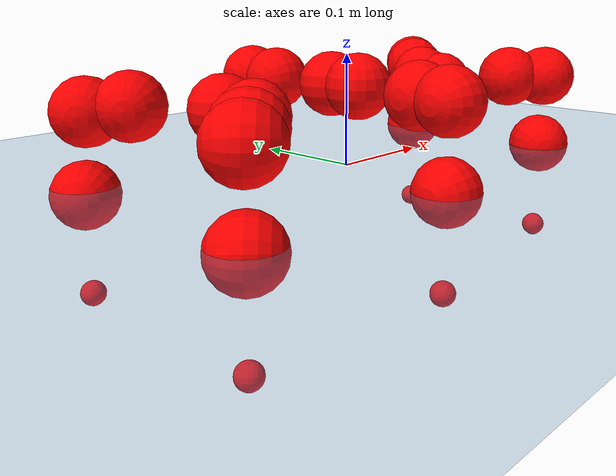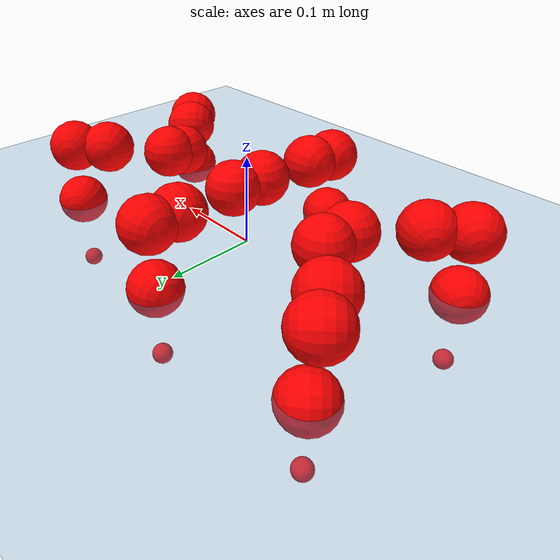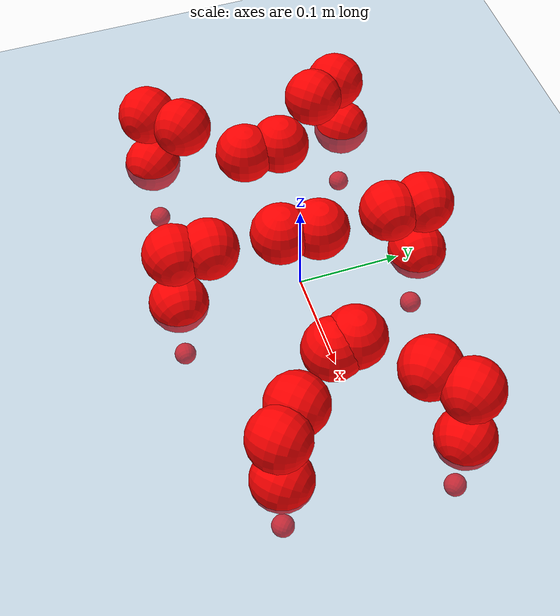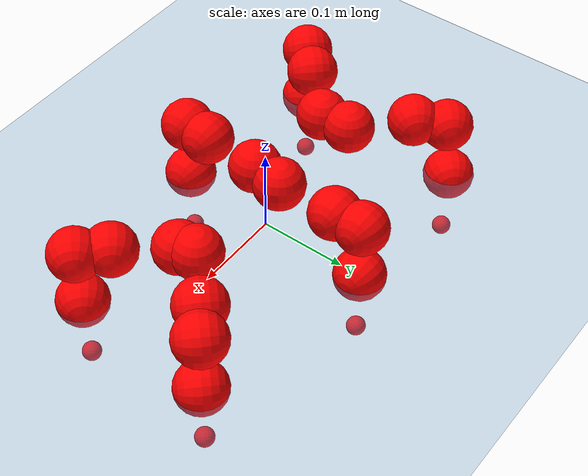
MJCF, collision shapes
<mujoco model="Golem">
  <compiler angle="radian" assetdir="assets" balanceinertia="true" inertiafromgeom="false"/>

  <option timestep="0.005" density="1.2" viscosity="2e-05"/>

  <size nkey="1"/>

  <visual>
    <quality shadowsize="8192"/>
    <map shadowclip="0.5"/>
  </visual>

  <default>
    <default class="/">
      <joint armature="0.01" damping="0.01" frictionloss="0.01"/>
      <geom contype="0" conaffinity="0" group="1" solref="-1000 -80"/>
      <site size="0.01 0.005 0.005" group="5"/>
      <general forcelimited="true" biastype="affine" gainprm="25" biasprm="0 -25 -0.5"/>
      <default class="visual">
        <geom type="mesh" group="2"/>
      </default>
      <default class="collision">
        <geom group="3"/>
      </default>
      <default class="foot">
        <geom size="0.01 0 0" condim="6" group="4" priority="1" solimp="0.015 1 0.01"/>
      </default>
      <default class="reward_collision_sphere">
        <geom group="5" rgba="1 0 0 1"/>
      </default>
    </default>
  </default>

  <asset>
    <texture type="skybox" colorspace="auto" name="//unnamed_texture_0" builtin="gradient" rgb1="0.95 0.95 0.95" rgb2="0.95 0.95 0.95" width="100" height="600"/>
    <texture type="2d" colorspace="auto" name="texplane" builtin="checker" rgb1="0.345 0.575 0.748" rgb2="0.345 0.575 0.748" markrgb="1 1 1" width="512" height="512"/>
    <material name="MatPlane" class="/" texture="texplane" texuniform="true" texrepeat="2 2" specular="0.9"/>
    <mesh name="body" class="/" file="body.stl" scale="0.001 0.001 0.001"/>
    <mesh name="coxa" class="/" file="coxa.stl" scale="0.001 0.001 0.001"/>
    <mesh name="femur" class="/" file="femur.stl" scale="0.001 0.001 0.001"/>
    <mesh name="tibia" class="/" file="tibia.stl" scale="0.001 0.001 0.001"/>
    <mesh name="tarsus" class="/" file="tarsus.stl" scale="0.001 0.001 0.001"/>
  </asset>

  <worldbody>
    <geom name="floor" class="/" size="100 100 0.125" type="plane" group="0" material="MatPlane"/>
    <light name="toplight_shadow" class="/" pos="0 0 5" dir="0.0990148 0.0990148 -0.990148" type="directional" ambient="0.04 0.04 0.04" diffuse="0.55 0.55 0.55" specular="0.12 0.12 0.12"/>
    <light name="toplight_fill" class="/" pos="0 0 5" dir="0.0990148 0.0990148 -0.990148" type="directional" castshadow="false" ambient="0.04 0.04 0.04" diffuse="0.3 0.3 0.3" specular="0.08 0.08 0.08"/>
    <body name="trunk" pos="-0.00044784 0.000365137 0.00261238" quat="0.999999 0.000166467 0.00088348 -0.00141955">
      <inertial pos="0.00323726 -0.000411244 -0.00321859" quat="0.999998 -0.000541088 -0.00189121 0.000459938" mass="1.38925" diaginertia="0.00343677 5.21624e-05 0.0120613"/>
      <joint name="//unnamed_joint_0" type="free"/>
      <geom name="//unnamed_geom_1" class="/" pos="0 0 0.0658561" quat="1 0 0 0" type="mesh" rgba="0.9 0.9 0.9 1" mesh="body"/>
      <site name="imu" class="/" pos="0.0911214 -0.00714481 0.0982811" size="0.0072632"/>
      <camera name="track" class="/" pos="0 -0.698292 0" quat="0.707107 0.707107 0 0" mode="trackcom"/>
      <camera name="ego_camera" class="/" pos="0.104106 0 0.1029" quat="-0.5 -0.5 0.5 0.5"/>
      <body name="coxa_RR" pos="-0.14088 -0.0335881 0.0597205" quat="0.38186 -0.000497536 0.00125864 -0.924219">
        <inertial pos="-0.000735002 0.000506938 -0.000277308" quat="0.99999 -0.000633367 -0.00412245 -0.00149843" mass="0.0738142" diaginertia="0.00328753 5.10938e-05 0.0115203"/>
        <joint name="coxa_joint_RR" class="/" pos="0 0 0" axis="-0.00480795 -0.00986547 -0.99994" stiffness="0.00599771" range="-3.13288 3.17759" armature="0.00723333" damping="0" frictionloss="0.00775107"/>
        <geom name="//unnamed_geom_2" class="/" type="mesh" rgba="0.2 0.2 0.2 1" mesh="coxa"/>
        <geom name="//unnamed_geom_3" class="reward_collision_sphere" size="0.0290528" pos="-0.0240244 0 0"/>
        <body name="femur_RR" pos="0.0472304 0.000179693 0.00372448" quat="0.500287 -0.499229 0.50033 0.500153">
          <inertial pos="-0.00120793 0.000528126 -0.0025786" quat="0.999995 -0.00167841 0.00132824 0.00249285" mass="0.0761929" diaginertia="0.00335586 5.26657e-05 0.0110711"/>
          <joint name="femur_joint_RR" class="/" pos="0 0 0" axis="-0.00608349 -0.00797573 -0.99995" range="-3.17678 3.13636" armature="0.00780958" damping="0.00162263" frictionloss="0.00628757"/>
          <geom name="//unnamed_geom_4" class="/" type="mesh" rgba="0.9 0.9 0.9 1" mesh="femur"/>
          <geom name="//unnamed_geom_5" class="reward_collision_sphere" size="0.0290528"/>
          <body name="tibia_RR" pos="0.00118197 -0.040885 -0.000366825" quat="8.92898e-05 1 1.8085e-05 -6.84141e-05">
            <inertial pos="-0.000462812 0.0015202 0.00170679" quat="0.999992 -0.00186918 0.00314509 -0.00143335" mass="0.0758218" diaginertia="0.00317299 5.20753e-05 0.0116352"/>
            <joint name="tibia_joint_RR" class="/" pos="0 0 0" axis="-0.00927231 -0.00544833 0.999942" stiffness="0.00820955" range="-3.184 3.1388" armature="0.00746208" damping="0.0119464" frictionloss="0.0065213"/>
            <geom name="//unnamed_geom_6" class="/" type="mesh" rgba="0.2 0.2 0.2 1" mesh="tibia"/>
            <geom name="//unnamed_geom_7" class="reward_collision_sphere" size="0.0290528"/>
            <body name="tarsus_RR" pos="0.071513 0.00109065 7.73228e-05" quat="0.999999 0.00106525 -0.000350731 -0.000697246">
              <inertial pos="0.0494297 -0.000702149 0.00230861" quat="0.500057 0.497994 0.500594 0.501348" mass="0.0765432" diaginertia="0.00344169 5.20419e-05 0.0119521"/>
              <joint name="tarsus_joint_RR" class="/" pos="0 0 0" axis="0.000517692 0.00405801 0.999992" range="-3.18162 3.09996" armature="0.00628271" damping="0.0142239" frictionloss="0.00809461"/>
              <geom name="//unnamed_geom_8" class="/" type="mesh" rgba="0.9 0.9 0.9 1" mesh="tarsus"/>
              <geom name="foot_1" class="foot" size="0.00782736" pos="0.089691 0 0" quat="0 -0.707107 0 0.707107"/>
              <geom name="//unnamed_geom_10" class="reward_collision_sphere" size="0.0290528"/>
              <geom name="//unnamed_geom_11" class="reward_collision_sphere" size="0.0108948" pos="0.0860873 0 0"/>
              <site name="foot_1" class="foot" pos="0.089691 0 0" quat="0 -0.707107 0 0.707107" size="0.0072632"/>
            </body>
          </body>
        </body>
      </body>
      <body name="coxa_RM" pos="-0.00431145 -0.0417869 0.0709102" quat="0.707499 -0.000262128 0.000658452 -0.706714">
        <inertial pos="0.002138 0.00132169 0.00250893" quat="0.999992 -0.000612208 0.00386859 -0.000246723" mass="0.0752459" diaginertia="0.00327689 5.0127e-05 0.0112279"/>
        <joint name="coxa_joint_RM" class="/" pos="0 0 0" axis="-0.0051397 -0.00471679 -0.999976" range="-3.13124 3.12508" armature="0.00622854" damping="0.0219207" frictionloss="0.00712356"/>
        <geom name="//unnamed_geom_12" class="/" type="mesh" rgba="0.2 0.2 0.2 1" mesh="coxa"/>
        <geom name="//unnamed_geom_13" class="reward_collision_sphere" size="0.0290528" pos="-0.0240244 0 0"/>
        <body name="femur_RM" pos="0.0444718 -0.00436224 -0.00099707" quat="0.500047 -0.499826 0.499955 0.500172">
          <inertial pos="0.00104453 0.00207116 0.000879932" quat="0.999915 0.0103176 -0.00204764 0.00767692" mass="0.078898" diaginertia="0.00340355 5.04228e-05 0.0112177"/>
          <joint name="femur_joint_RM" class="/" pos="0 0 0" axis="-0.0121857 0.00447841 -0.999916" range="-3.17893 3.1468" armature="0.0069534" damping="0.0122119" frictionloss="0.00752223"/>
          <geom name="//unnamed_geom_14" class="/" type="mesh" rgba="0.9 0.9 0.9 1" mesh="femur"/>
          <geom name="//unnamed_geom_15" class="reward_collision_sphere" size="0.0290528"/>
          <body name="tibia_RM" pos="0.000717144 -0.0321555 -0.00394613" quat="-0.000742772 1 0.000461946 0.000129295">
            <inertial pos="0.00253812 -0.00313596 0.00146108" quat="0.999988 0.00311924 0.0038174 0.000373294" mass="0.0758884" diaginertia="0.00320096 5.17451e-05 0.0113536"/>
            <joint name="tibia_joint_RM" class="/" pos="0 0 0" axis="0.00102888 0.000476874 0.999999" stiffness="0.00178851" range="-3.09355 3.09243" armature="0.00668347" damping="0.0168651" frictionloss="0.00618485"/>
            <geom name="//unnamed_geom_16" class="/" type="mesh" rgba="0.2 0.2 0.2 1" mesh="tibia"/>
            <geom name="//unnamed_geom_17" class="reward_collision_sphere" size="0.0290528"/>
            <body name="tarsus_RM" pos="0.0729604 5.54841e-05 0.000416691" quat="1 -0.000166363 -0.000386528 -2.3048e-05">
              <inertial pos="0.049109 -0.00183299 -0.000668474" quat="0.499429 0.499969 0.498038 0.502553" mass="0.0789588" diaginertia="0.00337838 5.3433e-05 0.0114162"/>
              <joint name="tarsus_joint_RM" class="/" pos="0 0 0" axis="0.000476973 -3.35258e-05 1" stiffness="0.00204919" range="-3.18489 3.17822" armature="0.00597208" damping="0.0037583" frictionloss="0.00731147"/>
              <geom name="//unnamed_geom_18" class="/" type="mesh" rgba="0.9 0.9 0.9 1" mesh="tarsus"/>
              <geom name="foot_2" class="foot" size="0.00673594" pos="0.089691 0 0" quat="0 -0.707107 0 0.707107"/>
              <geom name="//unnamed_geom_20" class="reward_collision_sphere" size="0.0290528"/>
              <geom name="//unnamed_geom_21" class="reward_collision_sphere" size="0.0108948" pos="0.0860873 0 0"/>
              <site name="foot_2" class="foot" pos="0.089691 0 0" quat="0 -0.707107 0 0.707107" size="0.0072632"/>
            </body>
          </body>
        </body>
      </body>
      <body name="coxa_RF" pos="0.14369 -0.0294738 0.061749" quat="0.923836 -0.000212078 0.00017097 -0.382788">
        <inertial pos="-8.6333e-05 0.00357165 0.00131711" quat="0.999998 0.000177461 0.000862724 0.00170452" mass="0.0734465" diaginertia="0.00328562 5.30176e-05 0.0114738"/>
        <joint name="coxa_joint_RF" class="/" pos="0 0 0" axis="0.000211639 -0.00184876 -0.999998" range="-3.1861 3.09956" armature="0.00685095" damping="0.0286438" frictionloss="0.00666751"/>
        <geom name="//unnamed_geom_22" class="/" type="mesh" rgba="0.2 0.2 0.2 1" mesh="coxa"/>
        <geom name="//unnamed_geom_23" class="reward_collision_sphere" size="0.0290528" pos="-0.0240244 0 0"/>
        <body name="femur_RF" pos="0.0437374 -0.00123258 0.00562635" quat="0.499873 -0.499563 0.499887 0.500676">
          <inertial pos="0.00111258 -0.000232821 -0.00188175" quat="0.999934 0.00411923 -0.00565359 -0.00912236" mass="0.0749712" diaginertia="0.00328593 5.40544e-05 0.0113069"/>
          <joint name="femur_joint_RF" class="/" pos="0 0 0" axis="0.00493989 -0.0116938 -0.999919" stiffness="0.00600783" range="-3.12789 3.13752" armature="0.00800365" damping="0" frictionloss="0.00790218"/>
          <geom name="//unnamed_geom_24" class="/" type="mesh" rgba="0.9 0.9 0.9 1" mesh="femur"/>
          <geom name="//unnamed_geom_25" class="reward_collision_sphere" size="0.0290528"/>
          <body name="tibia_RF" pos="-1.40141e-05 -0.0363087 0.0018104" quat="-2.82804e-05 1 -2.11527e-05 0.000118769">
            <inertial pos="0.000687011 0.00168645 -0.00247039" quat="0.999994 -0.00261005 -0.000687827 0.00231383" mass="0.076298" diaginertia="0.00327647 4.98835e-05 0.0108054"/>
            <joint name="tibia_joint_RF" class="/" pos="0 0 0" axis="-0.000473863 -0.00630606 0.99998" range="-3.19051 3.15736" armature="0.00627695" damping="0.0124097" frictionloss="0.00718645"/>
            <geom name="//unnamed_geom_26" class="/" type="mesh" rgba="0.2 0.2 0.2 1" mesh="tibia"/>
            <geom name="//unnamed_geom_27" class="reward_collision_sphere" size="0.0290528"/>
            <body name="tarsus_RF" pos="0.0686363 -0.00092973 -0.00154474" quat="1 -0.000425451 0.0002362 -0.00069125">
              <inertial pos="0.0502036 -0.00072505 -0.00318336" quat="0.499532 0.500562 0.499943 0.499962" mass="0.0771039" diaginertia="0.00330261 5.19407e-05 0.0118877"/>
              <joint name="tarsus_joint_RF" class="/" pos="0 0 0" axis="0.00668052 -0.00974146 0.99993" range="-3.18643 3.19162" armature="0.00723658" damping="0.0150047" frictionloss="0.0075292"/>
              <geom name="//unnamed_geom_28" class="/" type="mesh" rgba="0.9 0.9 0.9 1" mesh="tarsus"/>
              <geom name="foot_3" class="foot" size="0.00796403" pos="0.089691 0 0" quat="0 -0.707107 0 0.707107"/>
              <geom name="//unnamed_geom_30" class="reward_collision_sphere" size="0.0290528"/>
              <geom name="//unnamed_geom_31" class="reward_collision_sphere" size="0.0108948" pos="0.0860873 0 0"/>
              <site name="foot_3" class="foot" pos="0.089691 0 0" quat="0 -0.707107 0 0.707107" size="0.0072632"/>
            </body>
          </body>
        </body>
      </body>
      <body name="coxa_LR" pos="-0.140704 0.0365271 0.0608205" quat="0.38342 -0.000284319 -0.000362063 0.923574">
        <inertial pos="-0.00146009 -0.00130087 -0.00106854" quat="1 -8.58616e-05 -0.000471953 0.000414494" mass="0.0778197" diaginertia="0.00343833 5.24364e-05 0.0116615"/>
        <joint name="coxa_joint_LR" class="/" pos="0 0 0" axis="0.0120176 -0.000103817 -0.999928" range="-3.18905 3.15957" armature="0.00629042" damping="0.0272288" frictionloss="0.00755646"/>
        <geom name="//unnamed_geom_32" class="/" type="mesh" rgba="0.2 0.2 0.2 1" mesh="coxa"/>
        <geom name="//unnamed_geom_33" class="reward_collision_sphere" size="0.0290528" pos="-0.0240244 0 0"/>
        <body name="femur_LR" pos="0.048256 -0.00110305 0.00285857" quat="0.500452 -0.499474 0.499792 0.500282">
          <inertial pos="0.00275507 -0.00178182 -0.000178009" quat="0.999993 0.00310714 0.00196703 -0.00121066" mass="0.0737802" diaginertia="0.00326413 5.12448e-05 0.0116974"/>
          <joint name="femur_joint_LR" class="/" pos="0 0 0" axis="-0.000714705 -0.000674233 1" stiffness="0.00792204" range="-3.09927 3.06971" armature="0.00704612" damping="0.015599" frictionloss="0.00617328"/>
          <geom name="//unnamed_geom_34" class="/" type="mesh" rgba="0.9 0.9 0.9 1" mesh="femur"/>
          <geom name="//unnamed_geom_35" class="reward_collision_sphere" size="0.0290528"/>
          <body name="tibia_LR" pos="0.00521825 -0.0369866 -0.00725871" quat="-0.000973511 1 -0.000148617 3.03744e-05">
            <inertial pos="0.00301741 -0.0036473 0.00385217" quat="0.999911 -0.0118443 -0.00299759 0.00538936" mass="0.0727756" diaginertia="0.00320645 5.06596e-05 0.0111749"/>
            <joint name="tibia_joint_LR" class="/" pos="0 0 0" axis="-0.000497443 -0.00881573 -0.999961" range="-3.08615 3.16506" armature="0.00809005" damping="0.00117306" frictionloss="0.00660629"/>
            <geom name="//unnamed_geom_36" class="/" type="mesh" rgba="0.2 0.2 0.2 1" mesh="tibia"/>
            <geom name="//unnamed_geom_37" class="reward_collision_sphere" size="0.0290528"/>
            <body name="tarsus_LR" pos="0.0700591 0.00676557 0.00588045" quat="0.999999 0.00102471 -0.000671661 -0.000182498">
              <inertial pos="0.0488983 -0.00125199 -0.00155234" quat="0.5003 0.499866 0.500582 0.499252" mass="0.0782987" diaginertia="0.00337902 5.18146e-05 0.0118072"/>
              <joint name="tarsus_joint_LR" class="/" pos="0 0 0" axis="0.00595027 -0.0118784 -0.999912" range="-3.17836 3.14277" armature="0.00724365" damping="0.0251698" frictionloss="0.00795213"/>
              <geom name="//unnamed_geom_38" class="/" type="mesh" rgba="0.9 0.9 0.9 1" mesh="tarsus"/>
              <geom name="foot_4" class="foot" size="0.00760965" pos="0.089691 0 0" quat="0.707107 0 -0.707107 0"/>
              <geom name="//unnamed_geom_40" class="reward_collision_sphere" size="0.0290528"/>
              <geom name="//unnamed_geom_41" class="reward_collision_sphere" size="0.0108948" pos="0.0860873 0 0"/>
              <site name="foot_4" class="foot" pos="0.089691 0 0" quat="0.707107 0 -0.707107 0" size="0.0072632"/>
            </body>
          </body>
        </body>
      </body>
      <body name="coxa_LM" pos="0.000281206 0.0418807 0.0697772" quat="0.706569 -0.000406686 -0.00153516 0.707642">
        <inertial pos="-0.00233536 0.000115659 0.00130846" quat="0.999977 -0.00422199 0.00496064 0.00192402" mass="0.070834" diaginertia="0.00303359 4.96317e-05 0.0113351"/>
        <joint name="coxa_joint_LM" class="/" pos="0 0 0" axis="0.000954159 -0.000121752 -1" range="-3.12802 3.09175" armature="0.00700754" damping="0.017103" frictionloss="0.00717228"/>
        <geom name="//unnamed_geom_42" class="/" type="mesh" rgba="0.2 0.2 0.2 1" mesh="coxa"/>
        <geom name="//unnamed_geom_43" class="reward_collision_sphere" size="0.0290528" pos="-0.0240244 0 0"/>
        <body name="femur_LM" pos="0.0463997 0.000988386 -0.000842591" quat="0.49998 -0.500057 0.500036 0.499928">
          <inertial pos="0.000893092 -0.000349073 0.00070515" quat="0.999977 0.00238089 0.00309953 0.00557957" mass="0.0788725" diaginertia="0.00328887 5.33313e-05 0.0119019"/>
          <joint name="femur_joint_LM" class="/" pos="0 0 0" axis="0.00570862 0.0092486 0.999941" stiffness="0.0114324" range="-3.08768 3.11947" armature="0.00650752" damping="0.00854443" frictionloss="0.00765076"/>
          <geom name="//unnamed_geom_44" class="/" type="mesh" rgba="0.9 0.9 0.9 1" mesh="femur"/>
          <geom name="//unnamed_geom_45" class="reward_collision_sphere" size="0.0290528"/>
          <body name="tibia_LM" pos="-0.000139012 -0.0342236 -0.000254397" quat="-0.000447425 1 0.000551897 0.000509062">
            <inertial pos="0.00247083 -0.00361332 0.00122108" quat="1 0.000796983 0.000330574 -0.000196518" mass="0.0786968" diaginertia="0.00341726 5.30641e-05 0.0120413"/>
            <joint name="tibia_joint_LM" class="/" pos="0 0 0" axis="0.00161089 0.00212031 -0.999996" stiffness="0.0113966" range="-3.13484 3.13539" armature="0.00759413" damping="0.00529517" frictionloss="0.00668769"/>
            <geom name="//unnamed_geom_46" class="/" type="mesh" rgba="0.2 0.2 0.2 1" mesh="tibia"/>
            <geom name="//unnamed_geom_47" class="reward_collision_sphere" size="0.0290528"/>
            <body name="tarsus_LM" pos="0.0722498 -0.000185586 -0.00170258" quat="1 1.12208e-05 -0.00021317 -0.000120104">
              <inertial pos="0.0459984 -0.00175262 5.80975e-05" quat="0.500599 0.503776 0.501165 0.494413" mass="0.077574" diaginertia="0.00342638 5.31101e-05 0.0117642"/>
              <joint name="tarsus_joint_LM" class="/" pos="0 0 0" axis="-0.00133482 -0.00130029 -0.999998" range="-3.08655 3.13147" armature="0.00712902" damping="0" frictionloss="0.00744417"/>
              <geom name="//unnamed_geom_48" class="/" type="mesh" rgba="0.9 0.9 0.9 1" mesh="tarsus"/>
              <geom name="foot_5" class="foot" size="0.00786458" pos="0.089691 0 0" quat="0.707107 0 -0.707107 0"/>
              <geom name="//unnamed_geom_50" class="reward_collision_sphere" size="0.0290528"/>
              <geom name="//unnamed_geom_51" class="reward_collision_sphere" size="0.0108948" pos="0.0860873 0 0"/>
              <site name="foot_5" class="foot" pos="0.089691 0 0" quat="0.707107 0 -0.707107 0" size="0.0072632"/>
            </body>
          </body>
        </body>
      </body>
      <body name="coxa_LF" pos="0.141321 0.0257398 0.0668611" quat="0.92407 -0.000651527 0.000544078 0.382222">
        <inertial pos="-0.00190658 -0.000358601 -0.00126081" quat="0.999914 0.00594481 -0.00269503 0.011356" mass="0.0761234" diaginertia="0.00328122 5.25479e-05 0.0116016"/>
        <joint name="coxa_joint_LF" class="/" pos="0 0 0" axis="0.00471246 -0.0060189 -0.999971" range="-3.15287 3.08643" armature="0.00714717" damping="0.00618319" frictionloss="0.00794021"/>
        <geom name="//unnamed_geom_52" class="/" type="mesh" rgba="0.2 0.2 0.2 1" mesh="coxa"/>
        <geom name="//unnamed_geom_53" class="reward_collision_sphere" size="0.0290528" pos="-0.0240244 0 0"/>
        <body name="femur_LF" pos="0.0472529 -0.00250721 0.00341691" quat="0.500135 -0.500058 0.500294 0.499513">
          <inertial pos="0.00110258 0.000765804 -0.00192789" quat="0.999875 0.0099408 0.0111074 -0.00523963" mass="0.0772784" diaginertia="0.00321955 5.36602e-05 0.011484"/>
          <joint name="femur_joint_LF" class="/" pos="0 0 0" axis="-0.00780164 0.00348397 0.999963" range="-3.13849 3.09534" armature="0.00694193" damping="0.00162263" frictionloss="0.00854018"/>
          <geom name="//unnamed_geom_54" class="/" type="mesh" rgba="0.9 0.9 0.9 1" mesh="femur"/>
          <geom name="//unnamed_geom_55" class="reward_collision_sphere" size="0.0290528"/>
          <body name="tibia_LF" pos="0.000906643 -0.0401086 -0.00390667" quat="9.7156e-05 1 0.00032378 -0.000234184">
            <inertial pos="0.00180735 -0.000717679 5.20224e-05" quat="0.999952 -0.00130452 -0.00952395 -0.00172375" mass="0.0775727" diaginertia="0.00318235 5.06404e-05 0.0112803"/>
            <joint name="tibia_joint_LF" class="/" pos="0 0 0" axis="0.00354751 -0.0080633 -0.999961" range="-3.08227 3.14528" armature="0.00798167" damping="0" frictionloss="0.00696584"/>
            <geom name="//unnamed_geom_56" class="/" type="mesh" rgba="0.2 0.2 0.2 1" mesh="tibia"/>
            <geom name="//unnamed_geom_57" class="reward_collision_sphere" size="0.0290528"/>
            <body name="tarsus_LF" pos="0.0723504 0.00264576 0.00209615" quat="1 9.76347e-05 -6.98274e-05 -0.000101886">
              <inertial pos="0.0465898 -3.99861e-05 -0.00267722" quat="0.500106 0.497898 0.500917 0.501072" mass="0.0720458" diaginertia="0.00329703 5.01702e-05 0.0113531"/>
              <joint name="tarsus_joint_LF" class="/" pos="0 0 0" axis="-0.000512403 -0.000218725 -1" stiffness="0.0320584" range="-3.14457 3.16714" armature="0.00730785" damping="0.0355188" frictionloss="0.00788191"/>
              <geom name="//unnamed_geom_58" class="/" type="mesh" rgba="0.9 0.9 0.9 1" mesh="tarsus"/>
              <geom name="foot_6" class="foot" size="0.00747299" pos="0.089691 0 0" quat="0.707107 0 -0.707107 0"/>
              <geom name="//unnamed_geom_60" class="reward_collision_sphere" size="0.0290528"/>
              <geom name="//unnamed_geom_61" class="reward_collision_sphere" size="0.0108948" pos="0.0860873 0 0"/>
              <site name="foot_6" class="foot" pos="0.089691 0 0" quat="0.707107 0 -0.707107 0" size="0.0072632"/>
            </body>
          </body>
        </body>
      </body>
    </body>
  </worldbody>

  <contact>
    <pair class="/" geom1="floor" geom2="foot_1" name="//unnamed_contact_0"/>
    <pair class="/" geom1="floor" geom2="foot_2" name="//unnamed_contact_1"/>
    <pair class="/" geom1="floor" geom2="foot_3" name="//unnamed_contact_2"/>
    <pair class="/" geom1="floor" geom2="foot_4" name="//unnamed_contact_3"/>
    <pair class="/" geom1="floor" geom2="foot_5" name="//unnamed_contact_4"/>
    <pair class="/" geom1="floor" geom2="foot_6" name="//unnamed_contact_5"/>
  </contact>

  <actuator>
    <general name="coxa_joint_RR" class="/" joint="coxa_joint_RR" forcerange="-5.37594 5.37594" gainprm="19.4414" biasprm="0 -19.4414 -0.390367"/>
    <general name="femur_joint_RR" class="/" joint="femur_joint_RR" forcerange="-5.76897 5.76897" gainprm="19.4414" biasprm="0 -19.4414 -0.390367"/>
    <general name="tibia_joint_RR" class="/" joint="tibia_joint_RR" forcerange="-4.78282 4.78282" gainprm="19.4414" biasprm="0 -19.4414 -0.390367"/>
    <general name="tarsus_joint_RR" class="/" joint="tarsus_joint_RR" forcerange="-5.76791 5.76791" gainprm="19.4414" biasprm="0 -19.4414 -0.390367"/>
    <general name="coxa_joint_RM" class="/" joint="coxa_joint_RM" forcerange="-5.35179 5.35179" gainprm="19.4414" biasprm="0 -19.4414 -0.390367"/>
    <general name="femur_joint_RM" class="/" joint="femur_joint_RM" forcerange="-5.1615 5.1615" gainprm="19.4414" biasprm="0 -19.4414 -0.390367"/>
    <general name="tibia_joint_RM" class="/" joint="tibia_joint_RM" forcerange="-4.85338 4.85338" gainprm="19.4414" biasprm="0 -19.4414 -0.390367"/>
    <general name="tarsus_joint_RM" class="/" joint="tarsus_joint_RM" forcerange="-4.72515 4.72515" gainprm="19.4414" biasprm="0 -19.4414 -0.390367"/>
    <general name="coxa_joint_RF" class="/" joint="coxa_joint_RF" forcerange="-4.96844 4.96844" gainprm="19.4414" biasprm="0 -19.4414 -0.390367"/>
    <general name="femur_joint_RF" class="/" joint="femur_joint_RF" forcerange="-5.64761 5.64761" gainprm="19.4414" biasprm="0 -19.4414 -0.390367"/>
    <general name="tibia_joint_RF" class="/" joint="tibia_joint_RF" forcerange="-4.82243 4.82243" gainprm="19.4414" biasprm="0 -19.4414 -0.390367"/>
    <general name="tarsus_joint_RF" class="/" joint="tarsus_joint_RF" forcerange="-5.35231 5.35231" gainprm="19.4414" biasprm="0 -19.4414 -0.390367"/>
    <general name="coxa_joint_LR" class="/" joint="coxa_joint_LR" forcerange="-5.70297 5.70297" gainprm="19.4414" biasprm="0 -19.4414 -0.390367"/>
    <general name="femur_joint_LR" class="/" joint="femur_joint_LR" forcerange="-5.17624 5.17624" gainprm="19.4414" biasprm="0 -19.4414 -0.390367"/>
    <general name="tibia_joint_LR" class="/" joint="tibia_joint_LR" forcerange="-4.8371 4.8371" gainprm="19.4414" biasprm="0 -19.4414 -0.390367"/>
    <general name="tarsus_joint_LR" class="/" joint="tarsus_joint_LR" forcerange="-4.97725 4.97725" gainprm="19.4414" biasprm="0 -19.4414 -0.390367"/>
    <general name="coxa_joint_LM" class="/" joint="coxa_joint_LM" forcerange="-5.28108 5.28108" gainprm="19.4414" biasprm="0 -19.4414 -0.390367"/>
    <general name="femur_joint_LM" class="/" joint="femur_joint_LM" forcerange="-5.34039 5.34039" gainprm="19.4414" biasprm="0 -19.4414 -0.390367"/>
    <general name="tibia_joint_LM" class="/" joint="tibia_joint_LM" forcerange="-5.86366 5.86366" gainprm="19.4414" biasprm="0 -19.4414 -0.390367"/>
    <general name="tarsus_joint_LM" class="/" joint="tarsus_joint_LM" forcerange="-5.35454 5.35454" gainprm="19.4414" biasprm="0 -19.4414 -0.390367"/>
    <general name="coxa_joint_LF" class="/" joint="coxa_joint_LF" forcerange="-5.1444 5.1444" gainprm="19.4414" biasprm="0 -19.4414 -0.390367"/>
    <general name="femur_joint_LF" class="/" joint="femur_joint_LF" forcerange="-5.08696 5.08696" gainprm="19.4414" biasprm="0 -19.4414 -0.390367"/>
    <general name="tibia_joint_LF" class="/" joint="tibia_joint_LF" forcerange="-5.46867 5.46867" gainprm="19.4414" biasprm="0 -19.4414 -0.390367"/>
    <general name="tarsus_joint_LF" class="/" joint="tarsus_joint_LF" forcerange="-4.76821 4.76821" gainprm="19.4414" biasprm="0 -19.4414 -0.390367"/>
  </actuator>

  <sensor>
    <gyro site="imu" name="imu_angular_velocity"/>
    <velocimeter site="imu" name="imu_linear_velocity"/>
    <framelinvel objtype="site" objname="foot_1" name="foot_1_global_linear_velocity"/>
    <framelinvel objtype="site" objname="foot_2" name="foot_2_global_linear_velocity"/>
    <framelinvel objtype="site" objname="foot_3" name="foot_3_global_linear_velocity"/>
    <framelinvel objtype="site" objname="foot_4" name="foot_4_global_linear_velocity"/>
    <framelinvel objtype="site" objname="foot_5" name="foot_5_global_linear_velocity"/>
    <framelinvel objtype="site" objname="foot_6" name="foot_6_global_linear_velocity"/>
  </sensor>

  <keyframe>
    <key name="home" qpos="0 0 0.1457 1 0 0 0 0 0 0 0 0 0 0 0 0 0 0 0 0 0 0 0 0 0 0 0 0 0 0 0"/>
  </keyframe>
</mujoco>
